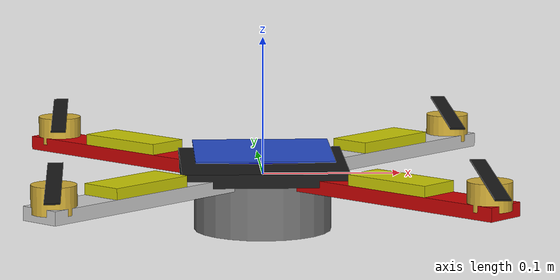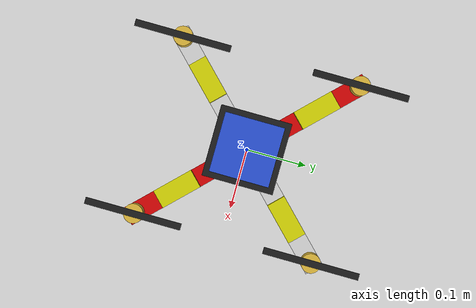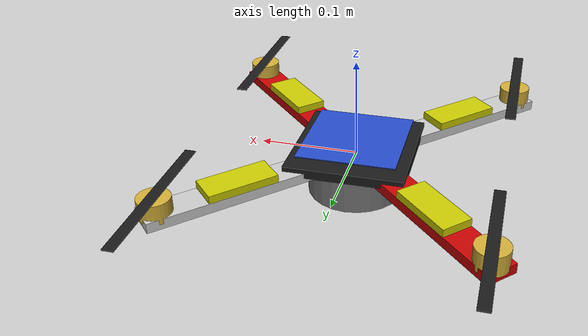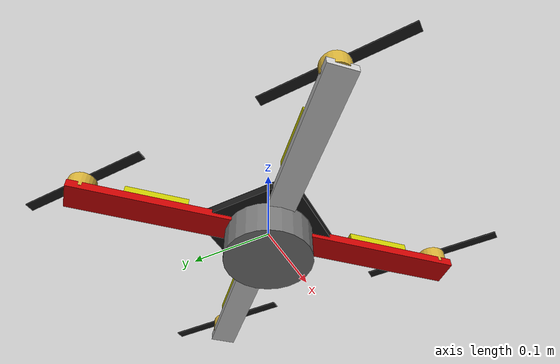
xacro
<?xml version="1.0"?>
<robot xmlns:xacro="http://www.ros.org/wiki/xacro" name="quad">

	<xacro:property name="width" value="0.0315" />
	<xacro:property name="length" value="0.45" />
	<xacro:property name="height" value="0.01" />
	<xacro:property name="mass_fr" value="0.5" />
	<xacro:property name="mass_pr" value="0.0055" />
	<xacro:property name="pi_value" value="3.14159263" />
	<xacro:property name="radiusp" value="0.20" />
	<xacro:property name="prop_loc" value="0.15909" />

	<xacro:include filename="material.xacro" />
	<xacro:include filename="control.xacro" />
	<xacro:include filename="lidar.xacro"/>

	<!-- Define inertial macro -->
	<xacro:macro name="default_inertial" params="mass p ix_value iy_value iz_value" >
		<inertial>
			<origin xyz="0 0 0" rpy="0 0 ${p}" />
			<mass value="${mass}" />
			<inertia ixx="${ix_value}" ixy="0" ixz="0"
					 iyy="${iy_value}" iyz="0" izz="${iz_value}" />
		</inertial>
	</xacro:macro>

    <!-- BASE LINK -->
    <link name="base_link">
    </link>

    <!-- BASE_FOOTPRINT LINK -->

	<link name="base_footprint">
    </link>

	<link name="base_link1">
		<visual>
			<origin xyz="0 0 0" rpy="0 0 ${pi_value/4}" />

			<geometry>
				<box size="${width} ${length} ${height}" />
			</geometry>

			<material name="red" />
		</visual>

		<collision>
			<origin xyz="0 0 0" rpy="0 0 ${pi_value/4}" />

			<geometry>
				<box size="${width} ${length} ${height}" />
			</geometry>
		</collision>

		<xacro:default_inertial mass="${mass_fr}" p="${pi_value/4}" ix_value="${0.04989/2}" iy_value="${0.04989/2}" iz_value="${0.24057/2}" />

	</link>
	<link name="base_link2">
		<visual>
			<origin xyz="0 0 0" rpy="0 0 ${-pi_value/4}" />

			<geometry>
				<box size="${width} ${length} ${height}" />
			</geometry>

			<material name="white" />
		</visual>

		<collision>
			<origin xyz="0 0 0" rpy="0 0 ${-pi_value/4}" />

			<geometry>
				<box size="${width} ${length} ${height}" />
			</geometry>
		</collision>

		<xacro:default_inertial mass="${mass_fr}" p="${-pi_value/4}" ix_value="${0.04989/2}" iy_value="${0.04989/2}" iz_value="${0.24057/2}" />
	</link>
	<link name="plate1">
		<visual>
			<origin xyz="0 0 0" rpy="0 0 0" />

			<geometry>
				<box size="${0.12} ${0.12} ${0.01}" />
			</geometry>

			<material name="black" />
		</visual>

		<collision>
			<origin xyz="0 0 0" rpy="0 0 0" />

			<geometry>
				<box size="${0.12} ${0.12} ${0.01}" />
			</geometry>
		</collision>

		<xacro:default_inertial mass="${0.01}" p="${0}" ix_value="${0}" iy_value="${0}" iz_value="${2.4-5}" />
	</link>
	<link name="plate2">
		<visual>
			<origin xyz="0 0 0" rpy="0 0 0" />

			<geometry>
				<box size="${0.05} ${0.03} ${0.005}" />
			</geometry>

			<material name="blue" />
		</visual>

		<collision>
			<origin xyz="0 0 0" rpy="0 0 0" />

			<geometry>
				<box size="${0.05} ${0.03} ${0.005}" />
			</geometry>
		</collision>

		<xacro:default_inertial mass="${0.001}" p="${0}" ix_value="${0}" iy_value="${0}" iz_value="${8.1666-7}" />
	</link>
	<link name="cyl1">
		<visual>
			<origin xyz="0 0 0" rpy="0 0 0" />

			<geometry>
				<cylinder radius="0.016" length="0.02" />
			</geometry>

			<material name="golden" />
		</visual>

		<collision>
			<origin xyz="0 0 0" rpy="0 0 0" />

			<geometry>
				<cylinder radius="0.016" length="0.02" />
			</geometry>
		</collision>

		<xacro:default_inertial mass="${0.01}" p="${0}" ix_value="${8.95e-6}" iy_value="${8.95e-6}" iz_value="${2.23e-4}" />
	</link>
	<link name="cyl2">
		<visual>
			<origin xyz="0 0 0" rpy="0 0 0" />

			<geometry>
				<cylinder radius="0.016" length="0.02" />
			</geometry>

			<material name="golden" />
		</visual>

		<collision>
			<origin xyz="0 0 0" rpy="0 0 0" />

			<geometry>
				<cylinder radius="0.016" length="0.02" />
			</geometry>
		</collision>

		<xacro:default_inertial mass="${0.01}" p="${0}" ix_value="${8.95e-6}" iy_value="${8.95e-6}" iz_value="${2.23e-4}" />
	</link>
	<link name="cyl3">
		<visual>
			<origin xyz="0 0 0" rpy="0 0 0" />

			<geometry>
				<cylinder radius="0.016" length="0.02" />
			</geometry>

			<material name="golden" />
		</visual>

		<collision>
			<origin xyz="0 0 0" rpy="0 0 0" />

			<geometry>
				<cylinder radius="0.016" length="0.02" />
			</geometry>
		</collision>

		<xacro:default_inertial mass="${0.01}" p="${0}" ix_value="${8.95e-6}" iy_value="${8.95e-6}" iz_value="${2.23e-4}" />
	</link>
	<link name="cyl4">
		<visual>
			<origin xyz="0 0 0" rpy="0 0 0" />

			<geometry>
				<cylinder radius="0.016" length="0.02" />
			</geometry>

			<material name="golden" />
		</visual>

		<collision>
			<origin xyz="0 0 0" rpy="0 0 0" />

			<geometry>
				<cylinder radius="0.016" length="0.02" />
			</geometry>
		</collision>

		<xacro:default_inertial mass="${0.01}" p="${0}" ix_value="${8.95e-6}" iy_value="${8.95e-6}" iz_value="${2.23e-4}" />
	</link>

<link name="arduino">
		<visual>
			<origin xyz="0 0 0" rpy="0 0 0" />
			<geometry>
				<box size="0.1 0.1 0.001" />
			</geometry>
		</visual>
		<collision>
			<origin xyz="0 0 0" rpy="0 0 0" />
			<geometry>
				<box size="0.1 0.1 0.001" />
			</geometry>
		</collision>
		<xacro:default_inertial mass="${0.01}" p="${0}" ix_value="${0}" iy_value="${0}" iz_value="${8.33333e-5}" />
	</link>

	<link name="ESC1">
		<visual>
			<origin xyz="0 0 0" rpy="0 0 ${-pi_value/4}" />

			<geometry>
				<box size="${width} ${0.07} ${0.008}" />
			</geometry>

			<material name="yellow" />
		</visual>

		<collision>
			<origin xyz="0 0 0" rpy="0 0 ${-pi_value/4}" />

			<geometry>
				<box size="${width} ${0.07} ${0.008}" />
			</geometry>
		</collision>

		<xacro:default_inertial mass="${0.01}" p="${-pi_value/4}" ix_value="${0}" iy_value="${0}" iz_value="${3.664e-5}" />
	</link>
	<link name="ESC2">
		<visual>
			<origin xyz="0 0 0" rpy="0 0 ${-pi_value/4}" />

			<geometry>
				<box size="${width} ${0.07} ${0.008}" />
			</geometry>

			<material name="yellow" />
		</visual>

		<collision>
			<origin xyz="0 0 0" rpy="0 0 ${-pi_value/4}" />

			<geometry>
				<box size="${width} ${0.07} ${0.008}" />
			</geometry>
		</collision>

		<xacro:default_inertial mass="${0.01}" p="${-pi_value/4}" ix_value="${0}" iy_value="${0}" iz_value="${3.664e-5}" />
	</link>
	<link name="ESC3">
		<visual>
			<origin xyz="0 0 0" rpy="0 0 ${pi_value/4}" />

			<geometry>
				<box size="${width} ${0.07} ${0.008}" />
			</geometry>

			<material name="yellow" />
		</visual>

		<collision>
			<origin xyz="0 0 0" rpy="0 0 ${pi_value/4}" />

			<geometry>
				<box size="${width} ${0.07} ${0.008}" />
			</geometry>
		</collision>

		<xacro:default_inertial mass="${0.01}" p="${pi_value/4}" ix_value="${0}" iy_value="${0}" iz_value="${3.664e-5}" />
	</link>
	<link name="ESC4">
		<visual>
			<origin xyz="0 0 0" rpy="0 0 ${pi_value/4}" />

			<geometry>
				<box size="${width} ${0.07} ${0.008}" />
			</geometry>

			<material name="yellow" />
		</visual>

		<collision>
			<origin xyz="0 0 0" rpy="0 0 ${pi_value/4}" />

			<geometry>
				<box size="${width} ${0.07} ${0.008}" />
			</geometry>
		</collision>

		<xacro:default_inertial mass="${0.01}" p="${pi_value/4}" ix_value="${0}" iy_value="${0}" iz_value="${3.664e-5}" />
	</link>
	<!-- Propellers of the quad: fr, fl, br, bl -->
	<link name="prop_front_right">
		<visual>
			<origin xyz="0 0 0" rpy="0 0 0" />

			<geometry>
				<box size="${0.03302/3} ${radiusp*0.8} ${0.001}" />
			</geometry>

			<material name="black" />
		</visual>

		<collision>
			<origin xyz="0 0 0" rpy="0 0 0" />

			<geometry>
				<box size="${0.03302/3} ${radiusp*0.8} ${0.001}" />
			</geometry>
		</collision>

		<xacro:default_inertial mass="${mass_pr}" p="${0}" ix_value="${0}" iy_value="${0}" iz_value="${4.42448e-5}" />
	</link>

	<link name="prop_front_left">
		<visual>
			<origin xyz="0 0 0" rpy="0 0 0" />

			<geometry>
				<box size="${0.03302/3} ${radiusp*0.8} ${0.001}" />
			</geometry>

			<material name="black"/>
		</visual>

		<collision>
			<origin xyz="0 0 0" rpy="0 0 0" />

			<geometry>
				<box size="${0.03302/3} ${radiusp*0.8} ${0.001}" />
			</geometry>
		</collision>

		<xacro:default_inertial mass="${mass_pr}" p="${0}"  ix_value="${0}" iy_value="${0}" iz_value="${4.42448e-5}" />

	</link>

	<link name="prop_back_right">
		<visual>
			<origin xyz="0 0 0" rpy="0 0 0" />

			<geometry>
				<box size="${0.03302/3} ${radiusp*0.8} ${0.001}" />
			</geometry>

			<material name="black"/>
		</visual>

		<collision>
			<origin xyz="0 0 0" rpy="0 0 0" />

			<geometry>
				<box size="${0.03302/3} ${radiusp*0.8} ${0.001}" />
			</geometry>
		</collision>

		<xacro:default_inertial mass="${mass_pr}" p="${0}"  ix_value="${0}" iy_value="${0}" iz_value="${4.42448e-5}" />

	</link>

	<link name="prop_back_left">
		<visual>
			<origin xyz="0 0 0" rpy="0 0 0" />

			<geometry>
				<box size="${0.03302/3} ${radiusp*0.8} ${0.001}" />
			</geometry>

			<material name="black"/>
		</visual>

		<collision>
			<origin xyz="0 0 0" rpy="0 0 0" />

			<geometry>
				<box size="${0.03302/3} ${radiusp*0.8} ${0.001}" />
			</geometry>
		</collision>

		<xacro:default_inertial mass="${mass_pr}" p="${0}"  ix_value="${0}" iy_value="${0}" iz_value="${4.42448e-5}" />

	</link>
   <!-- Define joint between base and footprint -->
   <joint name="base_footprint_joint" type="fixed">
        <parent link="base_link"/>
        <child link="base_footprint"/>
        <origin xyz="0 0 0" rpy="0 0 0"/>
    </joint>

	<!-- Define the joint between the arms of the frame -->
	<joint name="center_to_arm1" type="fixed">
		<parent link="base_link" />
		<child link="base_link1" />

		<origin xyz="0 0 0" rpy="0 0 0"/>
		<axis xyz="0 0 1" />
	</joint>

	<joint name="center_to_arm2" type="fixed">
		<parent link="base_link" />
		<child link="base_link2" />

		<origin xyz="0 0 0" rpy="0 0 0"/>
		<axis xyz="0 0 1" />
	</joint>
	<!-- Define joint between prop fr and frame -->
	<joint name="joint_front_right_prop" type="continuous">
		<parent link="base_link2" />
		<child link="prop_front_right" />
		<origin xyz="${prop_loc - 0.01} ${prop_loc - 0.01} 0.021" rpy="0 0 0"/>
		<axis xyz="0 0 1" />
	</joint>
	<!-- Define joint between prop fl and frame -->
	<joint name="joint_front_left_prop" type="continuous">
		<parent link="base_link1" />
		<child link="prop_front_left" />
		<origin xyz="${-prop_loc + 0.01} ${prop_loc - 0.01} 0.021" rpy="0 0 0" />
		<axis xyz="0 0 1" />
	</joint>
<!-- Define joint between prop br and frame -->
	<joint name="joint_back_right_prop" type="continuous">
		<parent link="base_link1" />
		<child link="prop_back_right" />
		<origin xyz="${prop_loc - 0.01} ${-prop_loc + 0.01} 0.021" rpy="0 0 0" />
		<axis xyz="0 0 1" />
	</joint>
<!-- Define joint between prop br and frame -->
	<joint name="joint_back_left_prop" type="continuous">
		<parent link="base_link2" />
		<child link="prop_back_left" />
		<origin xyz="${-prop_loc + 0.01} ${-prop_loc + 0.01} 0.021" rpy="0 0 0" />
		<axis xyz="0 0 1" />
	</joint>
<!-- Define joint between plate1 and frame -->
	<joint name="joint_plate1_frame" type="fixed">
		<parent link="base_link2" />
		<child link="plate1" />
		<origin xyz="${0} ${0} 0.005" rpy="0 0 0" />
		<axis xyz="0 0 1" />
	</joint>
<!-- Define joint between plate1 and plate2 -->
	<joint name="joint_plate2_frame" type="fixed">
		<parent link="plate1" />
		<child link="plate2" />
		<origin xyz="${0} ${0} 0.007" rpy="0 0 0" />
		<axis xyz="0 0 1" />
	</joint>
<!-- Define joint between cyl1 and frame -->
	<joint name="joint_cyl1_frame" type="fixed">
		<parent link="base_link2" />
		<child link="cyl1" />
		<origin xyz="${prop_loc - 0.01} ${prop_loc - 0.01} 0.01" rpy="0 0 0" />
		<axis xyz="0 0 1" />
	</joint>
<!-- Define joint between cyl2 and frame -->
	<joint name="joint_cyl2_frame" type="fixed">
		<parent link="base_link2" />
		<child link="cyl2" />
		<origin xyz="${-prop_loc + 0.01} ${-prop_loc + 0.01} 0.01" rpy="0 0 0" />
		<axis xyz="0 0 1" />
	</joint>
<!-- Define joint between cyl3 and frame -->
	<joint name="joint_cyl3_frame" type="fixed">
		<parent link="base_link1" />
		<child link="cyl3" />
		<origin xyz="${-prop_loc + 0.01} ${prop_loc - 0.01} 0.01" rpy="0 0 0" />
		<axis xyz="0 0 1" />
	</joint>
<!-- Define joint between cyl4 and frame -->
	<joint name="joint_cyl4_frame" type="fixed">
		<parent link="base_link1" />
		<child link="cyl4" />
		<origin xyz="${prop_loc - 0.01} ${-prop_loc + 0.01} 0.01" rpy="0 0 0" />
		<axis xyz="0 0 1" />
	</joint>
<!-- Define joint between Arduino and frame -->
	<joint name="joint_arduino_frame" type="fixed">
		<parent link="plate2" />
		<child link="arduino" />
		<origin xyz="${0} ${0} 0.005" rpy="0 0 0" />
		<axis xyz="0 0 1" />
	</joint>
<!-- Define joint between ESC and frame -->
	<joint name="joint_frame_ESC1" type="fixed">
		<parent link="base_link2" />
		<child link="ESC1" />
		<origin xyz="${prop_loc/2 + 0.013} ${prop_loc/2 + 0.013} 0.009" rpy="0 0 0" />
		<axis xyz="0 0 1" />
	</joint>
<!-- Define joint between ESC and frame -->
	<joint name="joint_frame_ESC2" type="fixed">
		<parent link="base_link2" />
		<child link="ESC2" />
		<origin xyz="${-prop_loc/2 - 0.013} ${-prop_loc/2 - 0.013} 0.009" rpy="0 0 0" />
		<axis xyz="0 0 1" />
	</joint>
<!-- Define joint between ESC and frame -->
	<joint name="joint_frame_ESC3" type="fixed">
		<parent link="base_link1" />
		<child link="ESC3" />
		<origin xyz="${-prop_loc/2 - 0.013} ${prop_loc/2 + 0.013} 0.009" rpy="0 0 0" />
		<axis xyz="0 0 1" />
	</joint>
<!-- Define joint between ESC and frame -->
	<joint name="joint_frame_ESC4" type="fixed">
		<parent link="base_link1" />
		<child link="ESC4" />
		<origin xyz="${prop_loc/2 + 0.013} ${-prop_loc/2 - 0.013} 0.009" rpy="0 0 0" />
		<axis xyz="0 0 1" />
	</joint>

<!-- Add transmission elements -->
	<transmission name="front_right_motor_joint" >
		<type>transmission_interface/SimpleTransmission</type>
		<joint name="joint_front_right_prop">
			<hardwareInterface>hardware_interface/VelocityJointInterface</hardwareInterface>
		</joint>
		<actuator name="BLDC_motor1">
			<hardwareInterface>hardware_interface/VelocityJointInterface</hardwareInterface>
			<mechanicalReduction>1</mechanicalReduction>
		</actuator>
	</transmission>

	<transmission name="front_left_motor_joint" >
		<type>transmission_interface/SimpleTransmission</type>
		<joint name="joint_front_left_prop">
			<hardwareInterface>hardware_interface/VelocityJointInterface</hardwareInterface>
		</joint>
		<actuator name="BLDC_motor2">
			<hardwareInterface>hardware_interface/VelocityJointInterface</hardwareInterface>
			<mechanicalReduction>1</mechanicalReduction>
		</actuator>
	</transmission>

	<transmission name="back_right_motor_joint" >
		<type>transmission_interface/SimpleTransmission</type>
		<joint name="joint_back_right_prop">
			<hardwareInterface>hardware_interface/VelocityJointInterface</hardwareInterface>
		</joint>
		<actuator name="BLDC_motor3">
			<hardwareInterface>hardware_interface/VelocityJointInterface</hardwareInterface>
			<mechanicalReduction>1</mechanicalReduction>
		</actuator>
	</transmission>

	<transmission name="back_left_motor_joint" >
		<type>transmission_interface/SimpleTransmission</type>
		<joint name="joint_back_left_prop">
			<hardwareInterface>hardware_interface/VelocityJointInterface</hardwareInterface>
		</joint>
		<actuator name="BLDC_motor4">
			<hardwareInterface>hardware_interface/VelocityJointInterface</hardwareInterface>
			<mechanicalReduction>1</mechanicalReduction>
		</actuator>
	</transmission>

</robot>

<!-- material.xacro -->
<robot xmlns:xacro="http://www.ros.org/wiki/xacro">

	<material name="white">
		<color rgba="0.8 0.8 0.8 1" />
	</material>

	<material name="black">
		<color rgba="0.1 0.1 0.1 1" />
	</material>

	<material name="red">
		<color rgba="0.8 0.01 0.01 1" />
	</material>

	<material name="blue">
		<color rgba="0.01 0.01 0.8 1" />
	</material>

	<material name="orange">
		<color rgba="0.46 0.46 0.46 1.0" />
	</material>

	<material name="golden">
		<color rgba="${212/255} ${175/255} ${55/255} 1" />
	</material>

	<material name="yellow">
		<color rgba="0.8 0.8 0.01 1" />
	</material>
	<!-- Define Gazebo tags for every link -->
	<gazebo reference="base_link1">
		<material>Gazebo/Red</material>
	</gazebo>

	<gazebo reference="base_link2">
		<material>Gazebo/White</material>
	</gazebo>

	<gazebo reference="plate1">
		<material>Gazebo/Black</material>
	</gazebo>

	<gazebo reference="plate2">
		<material>Gazebo/Blue</material>
	</gazebo>

	<gazebo reference="cyl1">
		<material>Gazebo/Gold</material>
	</gazebo>

	<gazebo reference="cyl2">
		<material>Gazebo/Gold</material>
	</gazebo>

	<gazebo reference="cyl3">
		<material>Gazebo/Gold</material>
	</gazebo>

	<gazebo reference="cyl4">
		<material>Gazebo/Gold</material>
	</gazebo>

	<gazebo reference="prop_front_right">
		<material>Gazebo/Black</material>
	</gazebo>

	<gazebo reference="prop_front_left">
		<material>Gazebo/Black</material>
	</gazebo>

	<gazebo reference="prop_back_right">
		<material>Gazebo/Black</material>
	</gazebo>

	<gazebo reference="prop_back_left">
		<material>Gazebo/Black</material>
	</gazebo>

	<gazebo reference="arduino" >
		<material>Gazebo/Blue</material>
	</gazebo>

	<gazebo reference="ESC1" >
		<material>Gazebo/Yellow</material>
	</gazebo>

	<gazebo reference="ESC2" >
		<material>Gazebo/Yellow</material>
	</gazebo>

	<gazebo reference="ESC3" >
		<material>Gazebo/Yellow</material>
	</gazebo>

	<gazebo reference="ESC4" >
		<material>Gazebo/Yellow</material>
	</gazebo>
</robot>

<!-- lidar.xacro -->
<robot xmlns:xacro="http://www.ros.org/wiki/xacro">

	<!-- Define inertial macro -->
    <xacro:macro name="inertial_cylinder" params="mass length radius *origin">
        <inertial>
            <xacro:insert_block name="origin"/>
            <mass value="${mass}" />
            <inertia ixx="${(1/12) * mass * (3*radius*radius + length*length)}" ixy="0.0" ixz="0.0"
                    iyy="${(1/12) * mass * (3*radius*radius + length*length)}" iyz="0.0"
                    izz="${(1/2) * mass * (radius*radius)}" />
        </inertial>
    </xacro:macro>

    <joint name="laser_joint" type="fixed">
        <parent link="base_link"/>
        <child link="laser_frame"/>
        <origin xyz="0 0 -0.02" rpy="0 0 0"/>
    </joint>

    <link name="laser_frame">
        <visual>
            <origin xyz="0 0 0" rpy="0 0 0"/>
            <geometry>
                <cylinder radius="0.05" length="0.04"/>
            </geometry>
            <material name="orange"/>
        </visual>
        <collision>
            <origin xyz="0 0 0" rpy="0 0 0"/>
            <geometry>
                <cylinder radius="0.05" length="0.04"/>
            </geometry>
        </collision>
        <xacro:inertial_cylinder mass="0.01" length="0.04" radius="0.05">
            <origin xyz="0 0 0" rpy="0 0 0"/>
        </xacro:inertial_cylinder>
    </link>

    <gazebo reference="laser_frame">
        <material>Gazebo/Orange</material>

        <sensor name="laser" type="ray">
            <pose> 0 0 0 0 0 0 </pose>
            <visualize>true</visualize>
            <update_rate>10</update_rate>
            <ray>
                <scan>
                    <horizontal>
                        <samples>360</samples>
                        <min_angle>-3.14</min_angle>
                        <max_angle>3.14</max_angle>
                    </horizontal>
                </scan>
                <range>
                    <min>0.3</min>
                    <max>12</max>
                </range>
            </ray>
            <plugin name="laser_controller" filename="libgazebo_ros_ray_sensor.so">
                <ros>
                    <argument>~/out:=scan</argument>
                </ros>
                <output_type>sensor_msgs/LaserScan</output_type>
                <frame_name>laser_frame</frame_name>
            </plugin>
        </sensor>
    </gazebo>

</robot>
